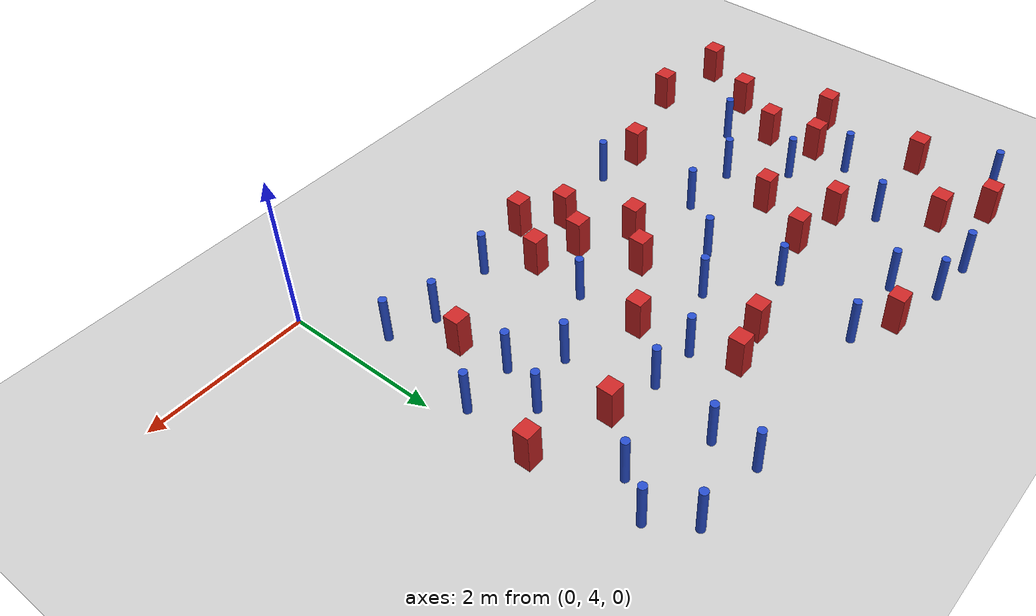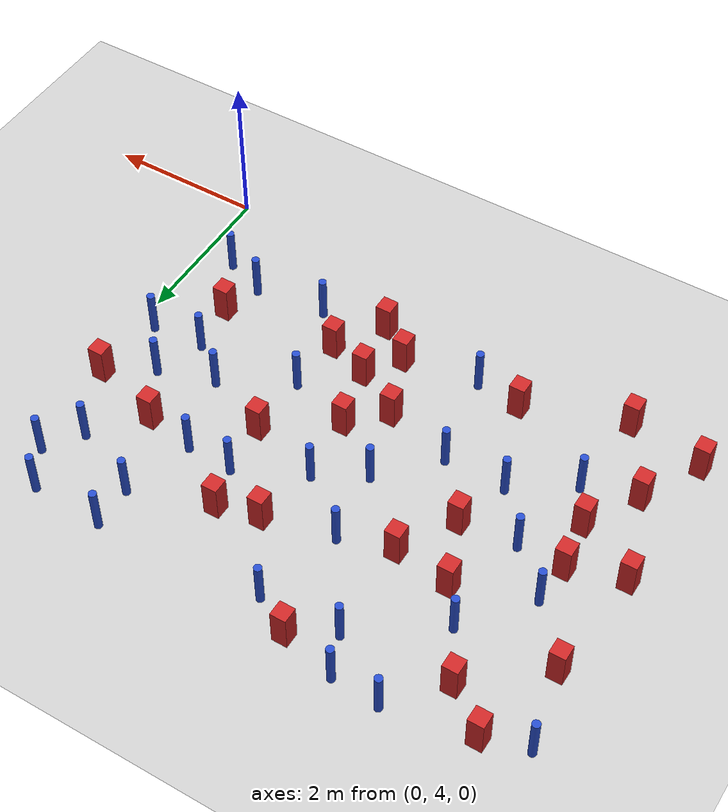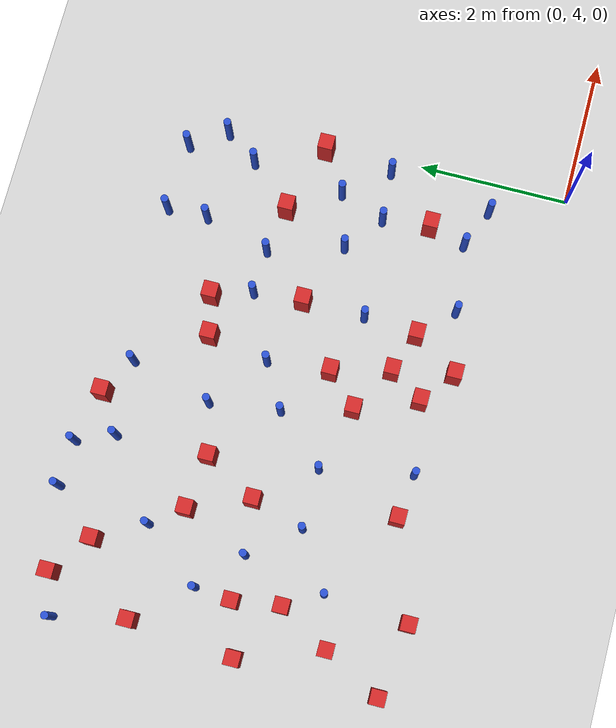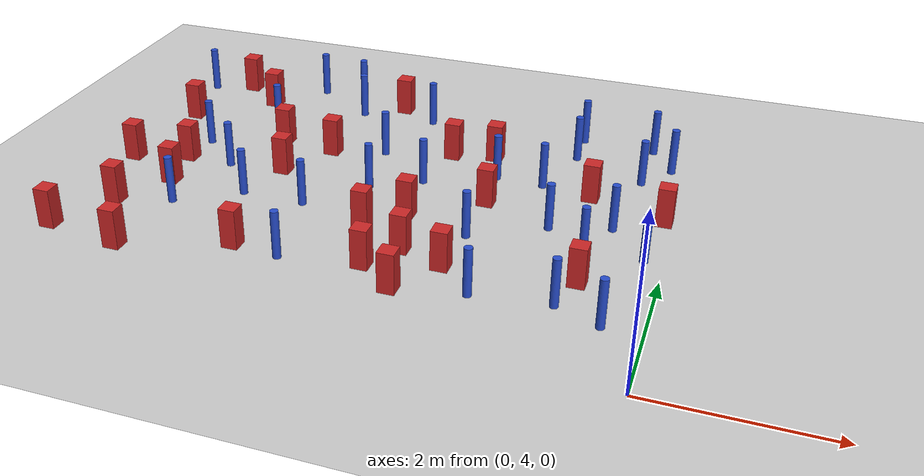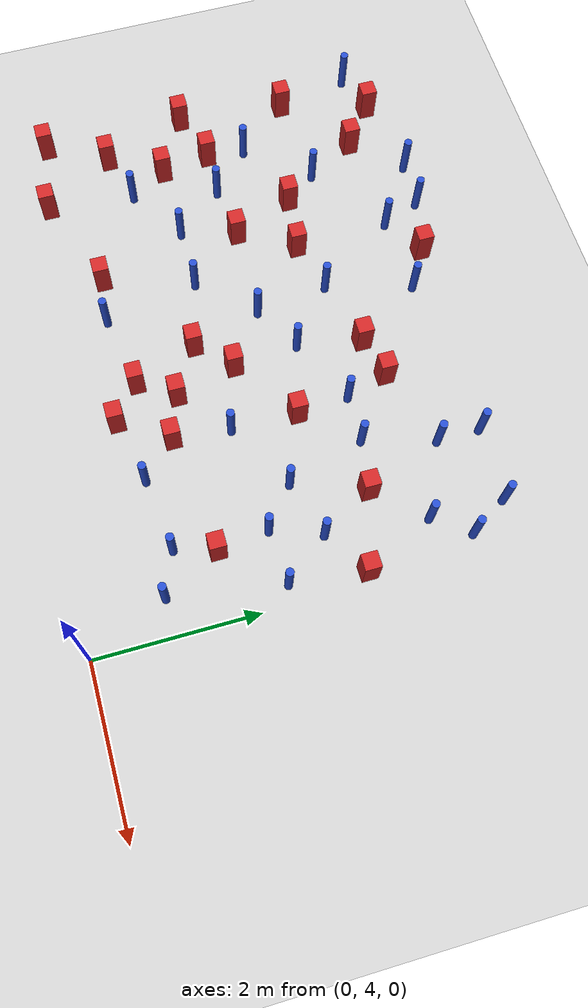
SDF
<sdf version="1.6">
 <world name="default">
  <model name="ground_plane">
   <static>1</static>
   <link name="link">
    <collision name="collision">
     <geometry><plane><normal>0 0 1</normal><size>100 100</size></plane></geometry>
     <surface><friction><ode><mu>100</mu><mu2>50</mu2></ode></friction></surface>
    </collision>
    <visual name="visual">
     <cast_shadows>0</cast_shadows>
     <geometry><plane><normal>0 0 1</normal><size>100 100</size></plane></geometry>
     <material>
      <ambient>1.0 1.0 1.0 1.0</ambient>
      <diffuse>0.8 0.8 0.8 1.0</diffuse>
      <specular>0.01 0.01 0.01 1.000000</specular>
     </material>
    </visual>
   </link>
  </model>
  <model name="pole_obstacle5">
   <static>true</static>
   <pose>-1.45639999024 9.13431002078 -3.09024884793e-07 -7.19054271912e-07 -2.1131507515e-07 -1.93935509273e-07</pose>
   <link name="link">
    <pose>0 0 0.3 0 -0 0</pose>
    <inertial>
     <mass>1</mass>
     <inertia><ixx>0.145833</ixx><ixy>0</ixy><ixz>0</ixz><iyy>0.145833</iyy><iyz>0</iyz><izz>0.125</izz></inertia>
    </inertial>
    <collision name="collision">
     <geometry><cylinder><radius>0.05</radius><length>.6</length></cylinder></geometry>
    </collision>
    <visual name="visual">
     <geometry><cylinder><radius>0.05</radius><length>.6</length></cylinder></geometry>
     <material>
      <script><name>Gazebo/Blue</name><uri>file://media/materials/scripts/gazebo.material</uri></script>
     </material>
    </visual>
   </link>
  </model>
  <model name="pole_obstacle6">
   <static>true</static>
   <pose>-0.533564990239 9.09575002078 -3.09024884793e-07 -7.19054271912e-07 -2.11315075159e-07 -1.93935509278e-07</pose>
   <link name="link">
    <pose>0 0 0.3 0 -0 0</pose>
    <inertial>
     <mass>1</mass>
     <inertia><ixx>0.145833</ixx><ixy>0</ixy><ixz>0</ixz><iyy>0.145833</iyy><iyz>0</iyz><izz>0.125</izz></inertia>
    </inertial>
    <collision name="collision">
     <geometry><cylinder><radius>0.05</radius><length>.6</length></cylinder></geometry>
    </collision>
    <visual name="visual">
     <geometry><cylinder><radius>0.05</radius><length>.6</length></cylinder></geometry>
     <material>
      <script><name>Gazebo/Blue</name><uri>file://media/materials/scripts/gazebo.material</uri></script>
     </material>
    </visual>
   </link>
  </model>
  <model name="square_post_obstacle11">
   <static>true</static>
   <pose>-3.0610999448 6.48294997467 -4.36207812815e-07 3.75137919937e-06 9.77721102514e-07 2.47381364184e-05</pose>
   <link name="link">
    <pose>0 0 0.25 0 -0 0</pose>
    <inertial>
     <mass>100</mass>
     <inertia>
      <ixx>0.166667</ixx>
      <ixy>0</ixy>
      <ixz>0</ixz>
      <iyy>0.166667</iyy>
      <iyz>0</iyz>
      <izz>0.166667</izz>
     </inertia>
    </inertial>
    <collision name="collision"><geometry><box><size>.2 .2 .5</size></box></geometry></collision>
    <visual name="visual">
     <geometry><box><size>.2 .2 .5</size></box></geometry>
     <material>
      <script><name>Gazebo/Red</name><uri>file://media/materials/scripts/gazebo.material</uri></script>
     </material>
    </visual>
   </link>
  </model>
  <model name="pole_obstacle20">
   <static>true</static>
   <pose>-0.547203990239 8.18078002078 -3.09024884793e-07 -7.19054271911e-07 -2.11315075168e-07 -1.93935509282e-07</pose>
   <link name="link">
    <pose>0 0 0.3 0 -0 0</pose>
    <inertial>
     <mass>1</mass>
     <inertia><ixx>0.145833</ixx><ixy>0</ixy><ixz>0</ixz><iyy>0.145833</iyy><iyz>0</iyz><izz>0.125</izz></inertia>
    </inertial>
    <collision name="collision">
     <geometry><cylinder><radius>0.05</radius><length>.6</length></cylinder></geometry>
    </collision>
    <visual name="visual">
     <geometry><cylinder><radius>0.05</radius><length>.6</length></cylinder></geometry>
     <material>
      <script><name>Gazebo/Blue</name><uri>file://media/materials/scripts/gazebo.material</uri></script>
     </material>
    </visual>
   </link>
  </model>
  <model name="pole_obstacle25">
   <static>true</static>
   <pose>-4.34102999024 6.30667002078 -3.09024884793e-07 -7.19054271911e-07 -2.1131507516e-07 -1.93935509277e-07</pose>
   <link name="link">
    <pose>0 0 0.3 0 -0 0</pose>
    <inertial>
     <mass>1</mass>
     <inertia><ixx>0.145833</ixx><ixy>0</ixy><ixz>0</ixz><iyy>0.145833</iyy><iyz>0</iyz><izz>0.125</izz></inertia>
    </inertial>
    <collision name="collision">
     <geometry><cylinder><radius>0.05</radius><length>.6</length></cylinder></geometry>
    </collision>
    <visual name="visual">
     <geometry><cylinder><radius>0.05</radius><length>.6</length></cylinder></geometry>
     <material>
      <script><name>Gazebo/Blue</name><uri>file://media/materials/scripts/gazebo.material</uri></script>
     </material>
    </visual>
   </link>
  </model>
  <model name="pole_obstacle26">
   <static>true</static>
   <pose>-1.88362999024 5.08133002078 -3.09024884793e-07 -7.19054271912e-07 -2.11315075132e-07 -1.93935509264e-07</pose>
   <link name="link">
    <pose>0 0 0.3 0 -0 0</pose>
    <inertial>
     <mass>1</mass>
     <inertia><ixx>0.145833</ixx><ixy>0</ixy><ixz>0</ixz><iyy>0.145833</iyy><iyz>0</iyz><izz>0.125</izz></inertia>
    </inertial>
    <collision name="collision">
     <geometry><cylinder><radius>0.05</radius><length>.6</length></cylinder></geometry>
    </collision>
    <visual name="visual">
     <geometry><cylinder><radius>0.05</radius><length>.6</length></cylinder></geometry>
     <material>
      <script><name>Gazebo/Blue</name><uri>file://media/materials/scripts/gazebo.material</uri></script>
     </material>
    </visual>
   </link>
  </model>
  <model name="pole_obstacle29">
   <static>true</static>
   <pose>-4.10729999024 5.09904002078 -3.09024884793e-07 -7.19054271911e-07 -2.1131507516e-07 -1.93935509277e-07</pose>
   <link name="link">
    <pose>0 0 0.3 0 -0 0</pose>
    <inertial>
     <mass>1</mass>
     <inertia><ixx>0.145833</ixx><ixy>0</ixy><ixz>0</ixz><iyy>0.145833</iyy><iyz>0</iyz><izz>0.125</izz></inertia>
    </inertial>
    <collision name="collision">
     <geometry><cylinder><radius>0.05</radius><length>.6</length></cylinder></geometry>
    </collision>
    <visual name="visual">
     <geometry><cylinder><radius>0.05</radius><length>.6</length></cylinder></geometry>
     <material>
      <script><name>Gazebo/Blue</name><uri>file://media/materials/scripts/gazebo.material</uri></script>
     </material>
    </visual>
   </link>
  </model>
  <model name="square_post_obstacle21">
   <static>true</static>
   <pose>-6.1377899448 6.31869997467 -4.36207812815e-07 3.75137919937e-06 9.77721102514e-07 2.47381364184e-05</pose>
   <link name="link">
    <pose>0 0 0.25 0 -0 0</pose>
    <inertial>
     <mass>100</mass>
     <inertia>
      <ixx>0.166667</ixx>
      <ixy>0</ixy>
      <ixz>0</ixz>
      <iyy>0.166667</iyy>
      <iyz>0</iyz>
      <izz>0.166667</izz>
     </inertia>
    </inertial>
    <collision name="collision"><geometry><box><size>.2 .2 .5</size></box></geometry></collision>
    <visual name="visual">
     <geometry><box><size>.2 .2 .5</size></box></geometry>
     <material>
      <script><name>Gazebo/Red</name><uri>file://media/materials/scripts/gazebo.material</uri></script>
     </material>
    </visual>
   </link>
  </model>
  <model name="pole_obstacle33">
   <static>true</static>
   <pose>-5.56033999024 8.23686002078 -3.09024884793e-07 -7.19054271912e-07 -2.1131507513e-07 -1.93935509261e-07</pose>
   <link name="link">
    <pose>0 0 0.3 0 -0 0</pose>
    <inertial>
     <mass>1</mass>
     <inertia><ixx>0.145833</ixx><ixy>0</ixy><ixz>0</ixz><iyy>0.145833</iyy><iyz>0</iyz><izz>0.125</izz></inertia>
    </inertial>
    <collision name="collision">
     <geometry><cylinder><radius>0.05</radius><length>.6</length></cylinder></geometry>
    </collision>
    <visual name="visual">
     <geometry><cylinder><radius>0.05</radius><length>.6</length></cylinder></geometry>
     <material>
      <script><name>Gazebo/Blue</name><uri>file://media/materials/scripts/gazebo.material</uri></script>
     </material>
    </visual>
   </link>
  </model>
  <model name="square_post_obstacle33">
   <static>true</static>
   <pose>-4.0554799448 9.26896997467 -4.36207812815e-07 3.75137919937e-06 9.77721102514e-07 2.47381364184e-05</pose>
   <link name="link">
    <pose>0 0 0.25 0 -0 0</pose>
    <inertial>
     <mass>100</mass>
     <inertia>
      <ixx>0.166667</ixx>
      <ixy>0</ixy>
      <ixz>0</ixz>
      <iyy>0.166667</iyy>
      <iyz>0</iyz>
      <izz>0.166667</izz>
     </inertia>
    </inertial>
    <collision name="collision"><geometry><box><size>.2 .2 .5</size></box></geometry></collision>
    <visual name="visual">
     <geometry><box><size>.2 .2 .5</size></box></geometry>
     <material>
      <script><name>Gazebo/Red</name><uri>file://media/materials/scripts/gazebo.material</uri></script>
     </material>
    </visual>
   </link>
  </model>
  <model name="pole_obstacle45">
   <static>true</static>
   <pose>-2.24777999024 6.23207002078 -3.09024884848e-07 -7.19054271903e-07 -2.11315075193e-07 -1.93935509285e-07</pose>
   <link name="link">
    <pose>0 0 0.3 0 -0 0</pose>
    <inertial>
     <mass>1</mass>
     <inertia><ixx>0.145833</ixx><ixy>0</ixy><ixz>0</ixz><iyy>0.145833</iyy><iyz>0</iyz><izz>0.125</izz></inertia>
    </inertial>
    <collision name="collision">
     <geometry><cylinder><radius>0.05</radius><length>.6</length></cylinder></geometry>
    </collision>
    <visual name="visual">
     <geometry><cylinder><radius>0.05</radius><length>.6</length></cylinder></geometry>
     <material>
      <script><name>Gazebo/Blue</name><uri>file://media/materials/scripts/gazebo.material</uri></script>
     </material>
    </visual>
   </link>
  </model>
  <model name="pole_obstacle55">
   <static>true</static>
   <pose>-2.29200999024 7.72665002078 -3.09024884848e-07 -7.19054271903e-07 -2.11315075193e-07 -1.93935509285e-07</pose>
   <link name="link">
    <pose>0 0 0.3 0 -0 0</pose>
    <inertial>
     <mass>1</mass>
     <inertia><ixx>0.145833</ixx><ixy>0</ixy><ixz>0</ixz><iyy>0.145833</iyy><iyz>0</iyz><izz>0.125</izz></inertia>
    </inertial>
    <collision name="collision">
     <geometry><cylinder><radius>0.05</radius><length>.6</length></cylinder></geometry>
    </collision>
    <visual name="visual">
     <geometry><cylinder><radius>0.05</radius><length>.6</length></cylinder></geometry>
     <material>
      <script><name>Gazebo/Blue</name><uri>file://media/materials/scripts/gazebo.material</uri></script>
     </material>
    </visual>
   </link>
  </model>
  <model name="pole_obstacle56">
   <static>true</static>
   <pose>-4.76418999024 9.44638002078 -3.09024884793e-07 -7.19054271912e-07 -2.1131507513e-07 -1.93935509261e-07</pose>
   <link name="link">
    <pose>0 0 0.3 0 -0 0</pose>
    <inertial>
     <mass>1</mass>
     <inertia><ixx>0.145833</ixx><ixy>0</ixy><ixz>0</ixz><iyy>0.145833</iyy><iyz>0</iyz><izz>0.125</izz></inertia>
    </inertial>
    <collision name="collision">
     <geometry><cylinder><radius>0.05</radius><length>.6</length></cylinder></geometry>
    </collision>
    <visual name="visual">
     <geometry><cylinder><radius>0.05</radius><length>.6</length></cylinder></geometry>
     <material>
      <script><name>Gazebo/Blue</name><uri>file://media/materials/scripts/gazebo.material</uri></script>
     </material>
    </visual>
   </link>
  </model>
  <model name="square_post_obstacle44">
   <static>true</static>
   <pose>-2.9895599448 8.12628997467 -4.36207812815e-07 3.75137919937e-06 9.77721102514e-07 2.47381364184e-05</pose>
   <link name="link">
    <pose>0 0 0.25 0 -0 0</pose>
    <inertial>
     <mass>100</mass>
     <inertia>
      <ixx>0.166667</ixx>
      <ixy>0</ixy>
      <ixz>0</ixz>
      <iyy>0.166667</iyy>
      <iyz>0</iyz>
      <izz>0.166667</izz>
     </inertia>
    </inertial>
    <collision name="collision"><geometry><box><size>.2 .2 .5</size></box></geometry></collision>
    <visual name="visual">
     <geometry><box><size>.2 .2 .5</size></box></geometry>
     <material>
      <script><name>Gazebo/Red</name><uri>file://media/materials/scripts/gazebo.material</uri></script>
     </material>
    </visual>
   </link>
  </model>
  <model name="square_post_obstacle45">
   <static>true</static>
   <pose>-2.8581299448 5.70772997467 -4.36207812815e-07 3.75137919937e-06 9.77721102514e-07 2.47381364184e-05</pose>
   <link name="link">
    <pose>0 0 0.25 0 -0 0</pose>
    <inertial>
     <mass>100</mass>
     <inertia>
      <ixx>0.166667</ixx>
      <ixy>0</ixy>
      <ixz>0</ixz>
      <iyy>0.166667</iyy>
      <iyz>0</iyz>
      <izz>0.166667</izz>
     </inertia>
    </inertial>
    <collision name="collision"><geometry><box><size>.2 .2 .5</size></box></geometry></collision>
    <visual name="visual">
     <geometry><box><size>.2 .2 .5</size></box></geometry>
     <material>
      <script><name>Gazebo/Red</name><uri>file://media/materials/scripts/gazebo.material</uri></script>
     </material>
    </visual>
   </link>
  </model>
  <model name="pole_obstacle62">
   <static>true</static>
   <pose>-5.13306999024 6.31591002078 -3.09024884793e-07 -7.19054271911e-07 -2.1131507516e-07 -1.93935509277e-07</pose>
   <link name="link">
    <pose>0 0 0.3 0 -0 0</pose>
    <inertial>
     <mass>1</mass>
     <inertia><ixx>0.145833</ixx><ixy>0</ixy><ixz>0</ixz><iyy>0.145833</iyy><iyz>0</iyz><izz>0.125</izz></inertia>
    </inertial>
    <collision name="collision">
     <geometry><cylinder><radius>0.05</radius><length>.6</length></cylinder></geometry>
    </collision>
    <visual name="visual">
     <geometry><cylinder><radius>0.05</radius><length>.6</length></cylinder></geometry>
     <material>
      <script><name>Gazebo/Blue</name><uri>file://media/materials/scripts/gazebo.material</uri></script>
     </material>
    </visual>
   </link>
  </model>
  <model name="square_post_obstacle49">
   <static>true</static>
   <pose>-6.7765499448 8.14212997467 -4.36207812815e-07 3.75137919937e-06 9.77721102514e-07 2.47381364184e-05</pose>
   <link name="link">
    <pose>0 0 0.25 0 -0 0</pose>
    <inertial>
     <mass>100</mass>
     <inertia>
      <ixx>0.166667</ixx>
      <ixy>0</ixy>
      <ixz>0</ixz>
      <iyy>0.166667</iyy>
      <iyz>0</iyz>
      <izz>0.166667</izz>
     </inertia>
    </inertial>
    <collision name="collision"><geometry><box><size>.2 .2 .5</size></box></geometry></collision>
    <visual name="visual">
     <geometry><box><size>.2 .2 .5</size></box></geometry>
     <material>
      <script><name>Gazebo/Red</name><uri>file://media/materials/scripts/gazebo.material</uri></script>
     </material>
    </visual>
   </link>
  </model>
  <model name="pole_obstacle66">
   <static>true</static>
   <pose>-3.56551999024 8.99974002078 -3.09024884793e-07 -7.19054271912e-07 -2.11315075137e-07 -1.93935509267e-07</pose>
   <link name="link">
    <pose>0 0 0.3 0 -0 0</pose>
    <inertial>
     <mass>1</mass>
     <inertia><ixx>0.145833</ixx><ixy>0</ixy><ixz>0</ixz><iyy>0.145833</iyy><iyz>0</iyz><izz>0.125</izz></inertia>
    </inertial>
    <collision name="collision">
     <geometry><cylinder><radius>0.05</radius><length>.6</length></cylinder></geometry>
    </collision>
    <visual name="visual">
     <geometry><cylinder><radius>0.05</radius><length>.6</length></cylinder></geometry>
     <material>
      <script><name>Gazebo/Blue</name><uri>file://media/materials/scripts/gazebo.material</uri></script>
     </material>
    </visual>
   </link>
  </model>
  <model name="square_post_obstacle58">
   <static>true</static>
   <pose>-6.9114599448 6.74060997467 -4.36207812815e-07 3.75137919937e-06 9.77721102514e-07 2.47381364184e-05</pose>
   <link name="link">
    <pose>0 0 0.25 0 -0 0</pose>
    <inertial>
     <mass>100</mass>
     <inertia>
      <ixx>0.166667</ixx>
      <ixy>0</ixy>
      <ixz>0</ixz>
      <iyy>0.166667</iyy>
      <iyz>0</iyz>
      <izz>0.166667</izz>
     </inertia>
    </inertial>
    <collision name="collision"><geometry><box><size>.2 .2 .5</size></box></geometry></collision>
    <visual name="visual">
     <geometry><box><size>.2 .2 .5</size></box></geometry>
     <material>
      <script><name>Gazebo/Red</name><uri>file://media/materials/scripts/gazebo.material</uri></script>
     </material>
    </visual>
   </link>
  </model>
  <model name="pole_obstacle69">
   <static>true</static>
   <pose>-1.39105999024 6.71941002078 -3.09024884793e-07 -7.19054271912e-07 -2.11315075134e-07 -1.93935509265e-07</pose>
   <link name="link">
    <pose>0 0 0.3 0 -0 0</pose>
    <inertial>
     <mass>1</mass>
     <inertia><ixx>0.145833</ixx><ixy>0</ixy><ixz>0</ixz><iyy>0.145833</iyy><iyz>0</iyz><izz>0.125</izz></inertia>
    </inertial>
    <collision name="collision">
     <geometry><cylinder><radius>0.05</radius><length>.6</length></cylinder></geometry>
    </collision>
    <visual name="visual">
     <geometry><cylinder><radius>0.05</radius><length>.6</length></cylinder></geometry>
     <material>
      <script><name>Gazebo/Blue</name><uri>file://media/materials/scripts/gazebo.material</uri></script>
     </material>
    </visual>
   </link>
  </model>
  <model name="square_post_obstacle65">
   <static>true</static>
   <pose>-4.5256199448 7.71997997467 -4.36207812815e-07 3.75137919937e-06 9.77721102514e-07 2.47381364184e-05</pose>
   <link name="link">
    <pose>0 0 0.25 0 -0 0</pose>
    <inertial>
     <mass>100</mass>
     <inertia>
      <ixx>0.166667</ixx>
      <ixy>0</ixy>
      <ixz>0</ixz>
      <iyy>0.166667</iyy>
      <iyz>0</iyz>
      <izz>0.166667</izz>
     </inertia>
    </inertial>
    <collision name="collision"><geometry><box><size>.2 .2 .5</size></box></geometry></collision>
    <visual name="visual">
     <geometry><box><size>.2 .2 .5</size></box></geometry>
     <material>
      <script><name>Gazebo/Red</name><uri>file://media/materials/scripts/gazebo.material</uri></script>
     </material>
    </visual>
   </link>
  </model>
  <model name="square_post_obstacle71">
   <static>true</static>
   <pose>-1.0699499448 7.59148997467 -4.36207812815e-07 3.75137919937e-06 9.77721102514e-07 2.47381364184e-05</pose>
   <link name="link">
    <pose>0 0 0.25 0 -0 0</pose>
    <inertial>
     <mass>100</mass>
     <inertia>
      <ixx>0.166667</ixx>
      <ixy>0</ixy>
      <ixz>0</ixz>
      <iyy>0.166667</iyy>
      <iyz>0</iyz>
      <izz>0.166667</izz>
     </inertia>
    </inertial>
    <collision name="collision"><geometry><box><size>.2 .2 .5</size></box></geometry></collision>
    <visual name="visual">
     <geometry><box><size>.2 .2 .5</size></box></geometry>
     <material>
      <script><name>Gazebo/Red</name><uri>file://media/materials/scripts/gazebo.material</uri></script>
     </material>
    </visual>
   </link>
  </model>
  <model name="square_post_obstacle80">
   <static>true</static>
   <pose>-5.2496499448 7.81441997467 -4.36207812815e-07 3.75137919937e-06 9.77721102514e-07 2.47381364184e-05</pose>
   <link name="link">
    <pose>0 0 0.25 0 -0 0</pose>
    <inertial>
     <mass>100</mass>
     <inertia>
      <ixx>0.166667</ixx>
      <ixy>0</ixy>
      <ixz>0</ixz>
      <iyy>0.166667</iyy>
      <iyz>0</iyz>
      <izz>0.166667</izz>
     </inertia>
    </inertial>
    <collision name="collision"><geometry><box><size>.2 .2 .5</size></box></geometry></collision>
    <visual name="visual">
     <geometry><box><size>.2 .2 .5</size></box></geometry>
     <material>
      <script><name>Gazebo/Red</name><uri>file://media/materials/scripts/gazebo.material</uri></script>
     </material>
    </visual>
   </link>
  </model>
  <model name="pole_obstacle93">
   <static>true</static>
   <pose>-1.69690999024 7.70587002078 -3.09024884793e-07 -7.19054271912e-07 -2.11315075134e-07 -1.93935509265e-07</pose>
   <link name="link">
    <pose>0 0 0.3 0 -0 0</pose>
    <inertial>
     <mass>1</mass>
     <inertia><ixx>0.145833</ixx><ixy>0</ixy><ixz>0</ixz><iyy>0.145833</iyy><iyz>0</iyz><izz>0.125</izz></inertia>
    </inertial>
    <collision name="collision">
     <geometry><cylinder><radius>0.05</radius><length>.6</length></cylinder></geometry>
    </collision>
    <visual name="visual">
     <geometry><cylinder><radius>0.05</radius><length>.6</length></cylinder></geometry>
     <material>
      <script><name>Gazebo/Blue</name><uri>file://media/materials/scripts/gazebo.material</uri></script>
     </material>
    </visual>
   </link>
  </model>
  <model name="pole_obstacle97">
   <static>true</static>
   <pose>-0.679304990239 6.93684002078 -3.09024884793e-07 -7.19054271912e-07 -2.11315075129e-07 -1.93935509261e-07</pose>
   <link name="link">
    <pose>0 0 0.3 0 -0 0</pose>
    <inertial>
     <mass>1</mass>
     <inertia><ixx>0.145833</ixx><ixy>0</ixy><ixz>0</ixz><iyy>0.145833</iyy><iyz>0</iyz><izz>0.125</izz></inertia>
    </inertial>
    <collision name="collision">
     <geometry><cylinder><radius>0.05</radius><length>.6</length></cylinder></geometry>
    </collision>
    <visual name="visual">
     <geometry><cylinder><radius>0.05</radius><length>.6</length></cylinder></geometry>
     <material>
      <script><name>Gazebo/Blue</name><uri>file://media/materials/scripts/gazebo.material</uri></script>
     </material>
    </visual>
   </link>
  </model>
  <model name="square_post_obstacle102">
   <static>true</static>
   <pose>-2.7092699448 4.91366997467 -4.36207812815e-07 3.75137919937e-06 9.77721102514e-07 2.47381364184e-05</pose>
   <link name="link">
    <pose>0 0 0.25 0 -0 0</pose>
    <inertial>
     <mass>100</mass>
     <inertia>
      <ixx>0.166667</ixx>
      <ixy>0</ixy>
      <ixz>0</ixz>
      <iyy>0.166667</iyy>
      <iyz>0</iyz>
      <izz>0.166667</izz>
     </inertia>
    </inertial>
    <collision name="collision"><geometry><box><size>.2 .2 .5</size></box></geometry></collision>
    <visual name="visual">
     <geometry><box><size>.2 .2 .5</size></box></geometry>
     <material>
      <script><name>Gazebo/Red</name><uri>file://media/materials/scripts/gazebo.material</uri></script>
     </material>
    </visual>
   </link>
  </model>
  <model name="square_post_obstacle108">
   <static>true</static>
   <pose>-4.9234599448 7.01937997467 -4.36207812815e-07 3.75137919937e-06 9.77721102514e-07 2.47381364184e-05</pose>
   <link name="link">
    <pose>0 0 0.25 0 -0 0</pose>
    <inertial>
     <mass>100</mass>
     <inertia>
      <ixx>0.166667</ixx>
      <ixy>0</ixy>
      <ixz>0</ixz>
      <iyy>0.166667</iyy>
      <iyz>0</iyz>
      <izz>0.166667</izz>
     </inertia>
    </inertial>
    <collision name="collision"><geometry><box><size>.2 .2 .5</size></box></geometry></collision>
    <visual name="visual">
     <geometry><box><size>.2 .2 .5</size></box></geometry>
     <material>
      <script><name>Gazebo/Red</name><uri>file://media/materials/scripts/gazebo.material</uri></script>
     </material>
    </visual>
   </link>
  </model>
  <model name="square_post_obstacle112">
   <static>true</static>
   <pose>-2.4591699448 8.25198997467 -4.36207812815e-07 3.75137919937e-06 9.77721102514e-07 2.47381364184e-05</pose>
   <link name="link">
    <pose>0 0 0.25 0 -0 0</pose>
    <inertial>
     <mass>100</mass>
     <inertia>
      <ixx>0.166667</ixx>
      <ixy>0</ixy>
      <ixz>0</ixz>
      <iyy>0.166667</iyy>
      <iyz>0</iyz>
      <izz>0.166667</izz>
     </inertia>
    </inertial>
    <collision name="collision"><geometry><box><size>.2 .2 .5</size></box></geometry></collision>
    <visual name="visual">
     <geometry><box><size>.2 .2 .5</size></box></geometry>
     <material>
      <script><name>Gazebo/Red</name><uri>file://media/materials/scripts/gazebo.material</uri></script>
     </material>
    </visual>
   </link>
  </model>
  <model name="square_post_obstacle117">
   <static>true</static>
   <pose>-5.9118499448 8.86777997467 -4.36207812815e-07 3.75137919937e-06 9.77721102514e-07 2.47381364184e-05</pose>
   <link name="link">
    <pose>0 0 0.25 0 -0 0</pose>
    <inertial>
     <mass>100</mass>
     <inertia>
      <ixx>0.166667</ixx>
      <ixy>0</ixy>
      <ixz>0</ixz>
      <iyy>0.166667</iyy>
      <iyz>0</iyz>
      <izz>0.166667</izz>
     </inertia>
    </inertial>
    <collision name="collision"><geometry><box><size>.2 .2 .5</size></box></geometry></collision>
    <visual name="visual">
     <geometry><box><size>.2 .2 .5</size></box></geometry>
     <material>
      <script><name>Gazebo/Red</name><uri>file://media/materials/scripts/gazebo.material</uri></script>
     </material>
    </visual>
   </link>
  </model>
  <model name="square_post_obstacle121">
   <static>true</static>
   <pose>-6.9255699448 4.88083997467 -4.36207812815e-07 3.75137919937e-06 9.77721102514e-07 2.47381364184e-05</pose>
   <link name="link">
    <pose>0 0 0.25 0 -0 0</pose>
    <inertial>
     <mass>100</mass>
     <inertia>
      <ixx>0.166667</ixx>
      <ixy>0</ixy>
      <ixz>0</ixz>
      <iyy>0.166667</iyy>
      <iyz>0</iyz>
      <izz>0.166667</izz>
     </inertia>
    </inertial>
    <collision name="collision"><geometry><box><size>.2 .2 .5</size></box></geometry></collision>
    <visual name="visual">
     <geometry><box><size>.2 .2 .5</size></box></geometry>
     <material>
      <script><name>Gazebo/Red</name><uri>file://media/materials/scripts/gazebo.material</uri></script>
     </material>
    </visual>
   </link>
  </model>
  <model name="pole_obstacle127">
   <static>true</static>
   <pose>-3.73083999024 6.97545002078 -3.09024884848e-07 -7.19054271903e-07 -2.11315075193e-07 -1.93935509285e-07</pose>
   <link name="link">
    <pose>0 0 0.3 0 -0 0</pose>
    <inertial>
     <mass>1</mass>
     <inertia><ixx>0.145833</ixx><ixy>0</ixy><ixz>0</ixz><iyy>0.145833</iyy><iyz>0</iyz><izz>0.125</izz></inertia>
    </inertial>
    <collision name="collision">
     <geometry><cylinder><radius>0.05</radius><length>.6</length></cylinder></geometry>
    </collision>
    <visual name="visual">
     <geometry><cylinder><radius>0.05</radius><length>.6</length></cylinder></geometry>
     <material>
      <script><name>Gazebo/Blue</name><uri>file://media/materials/scripts/gazebo.material</uri></script>
     </material>
    </visual>
   </link>
  </model>
  <model name="square_post_obstacle125">
   <static>true</static>
   <pose>-4.6965999448 5.17479997467 -4.36207812815e-07 3.75137919937e-06 9.77721102514e-07 2.47381364184e-05</pose>
   <link name="link">
    <pose>0 0 0.25 0 -0 0</pose>
    <inertial>
     <mass>100</mass>
     <inertia>
      <ixx>0.166667</ixx>
      <ixy>0</ixy>
      <ixz>0</ixz>
      <iyy>0.166667</iyy>
      <iyz>0</iyz>
      <izz>0.166667</izz>
     </inertia>
    </inertial>
    <collision name="collision"><geometry><box><size>.2 .2 .5</size></box></geometry></collision>
    <visual name="visual">
     <geometry><box><size>.2 .2 .5</size></box></geometry>
     <material>
      <script><name>Gazebo/Red</name><uri>file://media/materials/scripts/gazebo.material</uri></script>
     </material>
    </visual>
   </link>
  </model>
  <model name="pole_obstacle131">
   <static>true</static>
   <pose>-0.234541990239 8.61814002078 -3.09024884793e-07 -7.19054271911e-07 -2.11315075163e-07 -1.9393550928e-07</pose>
   <link name="link">
    <pose>0 0 0.3 0 -0 0</pose>
    <inertial>
     <mass>1</mass>
     <inertia><ixx>0.145833</ixx><ixy>0</ixy><ixz>0</ixz><iyy>0.145833</iyy><iyz>0</iyz><izz>0.125</izz></inertia>
    </inertial>
    <collision name="collision">
     <geometry><cylinder><radius>0.05</radius><length>.6</length></cylinder></geometry>
    </collision>
    <visual name="visual">
     <geometry><cylinder><radius>0.05</radius><length>.6</length></cylinder></geometry>
     <material>
      <script><name>Gazebo/Blue</name><uri>file://media/materials/scripts/gazebo.material</uri></script>
     </material>
    </visual>
   </link>
  </model>
  <model name="square_post_obstacle134">
   <static>true</static>
   <pose>-6.2294599448 6.95155997467 -4.36207812815e-07 3.75137919937e-06 9.77721102514e-07 2.47381364184e-05</pose>
   <link name="link">
    <pose>0 0 0.25 0 -0 0</pose>
    <inertial>
     <mass>100</mass>
     <inertia>
      <ixx>0.166667</ixx>
      <ixy>0</ixy>
      <ixz>0</ixz>
      <iyy>0.166667</iyy>
      <iyz>0</iyz>
      <izz>0.166667</izz>
     </inertia>
    </inertial>
    <collision name="collision"><geometry><box><size>.2 .2 .5</size></box></geometry></collision>
    <visual name="visual">
     <geometry><box><size>.2 .2 .5</size></box></geometry>
     <material>
      <script><name>Gazebo/Red</name><uri>file://media/materials/scripts/gazebo.material</uri></script>
     </material>
    </visual>
   </link>
  </model>
  <model name="pole_obstacle143">
   <static>true</static>
   <pose>-1.44700999024 8.59338002078 -3.09024884793e-07 -7.19054271912e-07 -2.1131507515e-07 -1.93935509273e-07</pose>
   <link name="link">
    <pose>0 0 0.3 0 -0 0</pose>
    <inertial>
     <mass>1</mass>
     <inertia><ixx>0.145833</ixx><ixy>0</ixy><ixz>0</ixz><iyy>0.145833</iyy><iyz>0</iyz><izz>0.125</izz></inertia>
    </inertial>
    <collision name="collision">
     <geometry><cylinder><radius>0.05</radius><length>.6</length></cylinder></geometry>
    </collision>
    <visual name="visual">
     <geometry><cylinder><radius>0.05</radius><length>.6</length></cylinder></geometry>
     <material>
      <script><name>Gazebo/Blue</name><uri>file://media/materials/scripts/gazebo.material</uri></script>
     </material>
    </visual>
   </link>
  </model>
  <model name="pole_obstacle145">
   <static>true</static>
   <pose>-5.63728999024 6.93918002078 -3.09024884793e-07 -7.19054271911e-07 -2.1131507516e-07 -1.93935509277e-07</pose>
   <link name="link">
    <pose>0 0 0.3 0 -0 0</pose>
    <inertial>
     <mass>1</mass>
     <inertia><ixx>0.145833</ixx><ixy>0</ixy><ixz>0</ixz><iyy>0.145833</iyy><iyz>0</iyz><izz>0.125</izz></inertia>
    </inertial>
    <collision name="collision">
     <geometry><cylinder><radius>0.05</radius><length>.6</length></cylinder></geometry>
    </collision>
    <visual name="visual">
     <geometry><cylinder><radius>0.05</radius><length>.6</length></cylinder></geometry>
     <material>
      <script><name>Gazebo/Blue</name><uri>file://media/materials/scripts/gazebo.material</uri></script>
     </material>
    </visual>
   </link>
  </model>
  <model name="pole_obstacle150">
   <static>true</static>
   <pose>-0.444746990239 4.97763002078 -3.09024884793e-07 -7.19054271912e-07 -2.1131507513e-07 -1.93935509262e-07</pose>
   <link name="link">
    <pose>0 0 0.3 0 -0 0</pose>
    <inertial>
     <mass>1</mass>
     <inertia><ixx>0.145833</ixx><ixy>0</ixy><ixz>0</ixz><iyy>0.145833</iyy><iyz>0</iyz><izz>0.125</izz></inertia>
    </inertial>
    <collision name="collision">
     <geometry><cylinder><radius>0.05</radius><length>.6</length></cylinder></geometry>
    </collision>
    <visual name="visual">
     <geometry><cylinder><radius>0.05</radius><length>.6</length></cylinder></geometry>
     <material>
      <script><name>Gazebo/Blue</name><uri>file://media/materials/scripts/gazebo.material</uri></script>
     </material>
    </visual>
   </link>
  </model>
  <model name="pole_obstacle159">
   <static>true</static>
   <pose>-6.98475999024 9.10542002078 -3.09024884793e-07 -7.19054271912e-07 -2.1131507513e-07 -1.93935509261e-07</pose>
   <link name="link">
    <pose>0 0 0.3 0 -0 0</pose>
    <inertial>
     <mass>1</mass>
     <inertia><ixx>0.145833</ixx><ixy>0</ixy><ixz>0</ixz><iyy>0.145833</iyy><iyz>0</iyz><izz>0.125</izz></inertia>
    </inertial>
    <collision name="collision">
     <geometry><cylinder><radius>0.05</radius><length>.6</length></cylinder></geometry>
    </collision>
    <visual name="visual">
     <geometry><cylinder><radius>0.05</radius><length>.6</length></cylinder></geometry>
     <material>
      <script><name>Gazebo/Blue</name><uri>file://media/materials/scripts/gazebo.material</uri></script>
     </material>
    </visual>
   </link>
  </model>
  <model name="pole_obstacle160">
   <static>true</static>
   <pose>-5.86121999024 5.84107002078 -3.09024884793e-07 -7.19054271911e-07 -2.1131507516e-07 -1.93935509277e-07</pose>
   <link name="link">
    <pose>0 0 0.3 0 -0 0</pose>
    <inertial>
     <mass>1</mass>
     <inertia><ixx>0.145833</ixx><ixy>0</ixy><ixz>0</ixz><iyy>0.145833</iyy><iyz>0</iyz><izz>0.125</izz></inertia>
    </inertial>
    <collision name="collision">
     <geometry><cylinder><radius>0.05</radius><length>.6</length></cylinder></geometry>
    </collision>
    <visual name="visual">
     <geometry><cylinder><radius>0.05</radius><length>.6</length></cylinder></geometry>
     <material>
      <script><name>Gazebo/Blue</name><uri>file://media/materials/scripts/gazebo.material</uri></script>
     </material>
    </visual>
   </link>
  </model>
  <model name="square_post_obstacle155">
   <static>true</static>
   <pose>-2.2430299448 7.06277997467 -4.36207812815e-07 3.75137919937e-06 9.77721102514e-07 2.47381364184e-05</pose>
   <link name="link">
    <pose>0 0 0.25 0 -0 0</pose>
    <inertial>
     <mass>100</mass>
     <inertia>
      <ixx>0.166667</ixx>
      <ixy>0</ixy>
      <ixz>0</ixz>
      <iyy>0.166667</iyy>
      <iyz>0</iyz>
      <izz>0.166667</izz>
     </inertia>
    </inertial>
    <collision name="collision"><geometry><box><size>.2 .2 .5</size></box></geometry></collision>
    <visual name="visual">
     <geometry><box><size>.2 .2 .5</size></box></geometry>
     <material>
      <script><name>Gazebo/Red</name><uri>file://media/materials/scripts/gazebo.material</uri></script>
     </material>
    </visual>
   </link>
  </model>
  <model name="square_post_obstacle160">
   <static>true</static>
   <pose>-6.4437099448 9.27630997467 -4.36207812815e-07 3.75137919937e-06 9.77721102514e-07 2.47381364184e-05</pose>
   <link name="link">
    <pose>0 0 0.25 0 -0 0</pose>
    <inertial>
     <mass>100</mass>
     <inertia>
      <ixx>0.166667</ixx>
      <ixy>0</ixy>
      <ixz>0</ixz>
      <iyy>0.166667</iyy>
      <iyz>0</iyz>
      <izz>0.166667</izz>
     </inertia>
    </inertial>
    <collision name="collision"><geometry><box><size>.2 .2 .5</size></box></geometry></collision>
    <visual name="visual">
     <geometry><box><size>.2 .2 .5</size></box></geometry>
     <material>
      <script><name>Gazebo/Red</name><uri>file://media/materials/scripts/gazebo.material</uri></script>
     </material>
    </visual>
   </link>
  </model>
  <model name="pole_obstacle168">
   <static>true</static>
   <pose>-4.56327999024 8.95270002078 -3.09024884793e-07 -7.19054271912e-07 -2.1131507513e-07 -1.93935509261e-07</pose>
   <link name="link">
    <pose>0 0 0.3 0 -0 0</pose>
    <inertial>
     <mass>1</mass>
     <inertia><ixx>0.145833</ixx><ixy>0</ixy><ixz>0</ixz><iyy>0.145833</iyy><iyz>0</iyz><izz>0.125</izz></inertia>
    </inertial>
    <collision name="collision">
     <geometry><cylinder><radius>0.05</radius><length>.6</length></cylinder></geometry>
    </collision>
    <visual name="visual">
     <geometry><cylinder><radius>0.05</radius><length>.6</length></cylinder></geometry>
     <material>
      <script><name>Gazebo/Blue</name><uri>file://media/materials/scripts/gazebo.material</uri></script>
     </material>
    </visual>
   </link>
  </model>
  <model name="pole_obstacle171">
   <static>true</static>
   <pose>-0.971240990239 5.19113002078 -3.09024884793e-07 -7.19054271912e-07 -2.11315075128e-07 -1.93935509261e-07</pose>
   <link name="link">
    <pose>0 0 0.3 0 -0 0</pose>
    <inertial>
     <mass>1</mass>
     <inertia><ixx>0.145833</ixx><ixy>0</ixy><ixz>0</ixz><iyy>0.145833</iyy><iyz>0</iyz><izz>0.125</izz></inertia>
    </inertial>
    <collision name="collision">
     <geometry><cylinder><radius>0.05</radius><length>.6</length></cylinder></geometry>
    </collision>
    <visual name="visual">
     <geometry><cylinder><radius>0.05</radius><length>.6</length></cylinder></geometry>
     <material>
      <script><name>Gazebo/Blue</name><uri>file://media/materials/scripts/gazebo.material</uri></script>
     </material>
    </visual>
   </link>
  </model>
  <model name="pole_obstacle174">
   <static>true</static>
   <pose>-0.901880990239 6.32449002078 -3.09024884793e-07 -7.19054271912e-07 -2.11315075126e-07 -1.9393550926e-07</pose>
   <link name="link">
    <pose>0 0 0.3 0 -0 0</pose>
    <inertial>
     <mass>1</mass>
     <inertia><ixx>0.145833</ixx><ixy>0</ixy><ixz>0</ixz><iyy>0.145833</iyy><iyz>0</iyz><izz>0.125</izz></inertia>
    </inertial>
    <collision name="collision">
     <geometry><cylinder><radius>0.05</radius><length>.6</length></cylinder></geometry>
    </collision>
    <visual name="visual">
     <geometry><cylinder><radius>0.05</radius><length>.6</length></cylinder></geometry>
     <material>
      <script><name>Gazebo/Blue</name><uri>file://media/materials/scripts/gazebo.material</uri></script>
     </material>
    </visual>
   </link>
  </model>
  <model name="pole_obstacle179">
   <static>true</static>
   <pose>-3.85858999024 7.90715002078 -3.09024884848e-07 -7.19054271903e-07 -2.11315075193e-07 -1.93935509285e-07</pose>
   <link name="link">
    <pose>0 0 0.3 0 -0 0</pose>
    <inertial>
     <mass>1</mass>
     <inertia><ixx>0.145833</ixx><ixy>0</ixy><ixz>0</ixz><iyy>0.145833</iyy><iyz>0</iyz><izz>0.125</izz></inertia>
    </inertial>
    <collision name="collision">
     <geometry><cylinder><radius>0.05</radius><length>.6</length></cylinder></geometry>
    </collision>
    <visual name="visual">
     <geometry><cylinder><radius>0.05</radius><length>.6</length></cylinder></geometry>
     <material>
      <script><name>Gazebo/Blue</name><uri>file://media/materials/scripts/gazebo.material</uri></script>
     </material>
    </visual>
   </link>
  </model>
  <model name="square_post_obstacle175">
   <static>true</static>
   <pose>-3.4693899448 6.07229997467 -4.36207812815e-07 3.75137919937e-06 9.77721102514e-07 2.47381364184e-05</pose>
   <link name="link">
    <pose>0 0 0.25 0 -0 0</pose>
    <inertial>
     <mass>100</mass>
     <inertia>
      <ixx>0.166667</ixx>
      <ixy>0</ixy>
      <ixz>0</ixz>
      <iyy>0.166667</iyy>
      <iyz>0</iyz>
      <izz>0.166667</izz>
     </inertia>
    </inertial>
    <collision name="collision"><geometry><box><size>.2 .2 .5</size></box></geometry></collision>
    <visual name="visual">
     <geometry><box><size>.2 .2 .5</size></box></geometry>
     <material>
      <script><name>Gazebo/Red</name><uri>file://media/materials/scripts/gazebo.material</uri></script>
     </material>
    </visual>
   </link>
  </model>
  <model name="pole_obstacle181">
   <static>true</static>
   <pose>-3.13768999024 7.31857002078 -3.09024884793e-07 -7.19054271912e-07 -2.11315075134e-07 -1.93935509266e-07</pose>
   <link name="link">
    <pose>0 0 0.3 0 -0 0</pose>
    <inertial>
     <mass>1</mass>
     <inertia><ixx>0.145833</ixx><ixy>0</ixy><ixz>0</ixz><iyy>0.145833</iyy><iyz>0</iyz><izz>0.125</izz></inertia>
    </inertial>
    <collision name="collision">
     <geometry><cylinder><radius>0.05</radius><length>.6</length></cylinder></geometry>
    </collision>
    <visual name="visual">
     <geometry><cylinder><radius>0.05</radius><length>.6</length></cylinder></geometry>
     <material>
      <script><name>Gazebo/Blue</name><uri>file://media/materials/scripts/gazebo.material</uri></script>
     </material>
    </visual>
   </link>
  </model>
  <model name="pole_obstacle184">
   <static>true</static>
   <pose>-6.18377999024 7.45026002078 -3.09024884793e-07 -7.19054271911e-07 -2.1131507516e-07 -1.93935509277e-07</pose>
   <link name="link">
    <pose>0 0 0.3 0 -0 0</pose>
    <inertial>
     <mass>1</mass>
     <inertia><ixx>0.145833</ixx><ixy>0</ixy><ixz>0</ixz><iyy>0.145833</iyy><iyz>0</iyz><izz>0.125</izz></inertia>
    </inertial>
    <collision name="collision">
     <geometry><cylinder><radius>0.05</radius><length>.6</length></cylinder></geometry>
    </collision>
    <visual name="visual">
     <geometry><cylinder><radius>0.05</radius><length>.6</length></cylinder></geometry>
     <material>
      <script><name>Gazebo/Blue</name><uri>file://media/materials/scripts/gazebo.material</uri></script>
     </material>
    </visual>
   </link>
  </model>
  <model name="square_post_obstacle195">
   <static>true</static>
   <pose>-6.5245299448 5.64516997467 -4.36207812815e-07 3.75137919937e-06 9.77721102514e-07 2.47381364184e-05</pose>
   <link name="link">
    <pose>0 0 0.25 0 -0 0</pose>
    <inertial>
     <mass>100</mass>
     <inertia>
      <ixx>0.166667</ixx>
      <ixy>0</ixy>
      <ixz>0</ixz>
      <iyy>0.166667</iyy>
      <iyz>0</iyz>
      <izz>0.166667</izz>
     </inertia>
    </inertial>
    <collision name="collision"><geometry><box><size>.2 .2 .5</size></box></geometry></collision>
    <visual name="visual">
     <geometry><box><size>.2 .2 .5</size></box></geometry>
     <material>
      <script><name>Gazebo/Red</name><uri>file://media/materials/scripts/gazebo.material</uri></script>
     </material>
    </visual>
   </link>
  </model>
  <model name="square_post_obstacle200">
   <static>true</static>
   <pose>-0.831565944804 5.68773997467 -4.36207812815e-07 3.75137919937e-06 9.77721102514e-07 2.47381364184e-05</pose>
   <link name="link">
    <pose>0 0 0.25 0 -0 0</pose>
    <inertial>
     <mass>100</mass>
     <inertia>
      <ixx>0.166667</ixx>
      <ixy>0</ixy>
      <ixz>0</ixz>
      <iyy>0.166667</iyy>
      <iyz>0</iyz>
      <izz>0.166667</izz>
     </inertia>
    </inertial>
    <collision name="collision"><geometry><box><size>.2 .2 .5</size></box></geometry></collision>
    <visual name="visual">
     <geometry><box><size>.2 .2 .5</size></box></geometry>
     <material>
      <script><name>Gazebo/Red</name><uri>file://media/materials/scripts/gazebo.material</uri></script>
     </material>
    </visual>
   </link>
  </model>
  <model name="pole_obstacle193">
   <static>true</static>
   <pose>-0.227513990239 6.37056002078 -3.09024884793e-07 -7.19054271912e-07 -2.11315075131e-07 -1.93935509264e-07</pose>
   <link name="link">
    <pose>0 0 0.3 0 -0 0</pose>
    <inertial>
     <mass>1</mass>
     <inertia><ixx>0.145833</ixx><ixy>0</ixy><ixz>0</ixz><iyy>0.145833</iyy><iyz>0</iyz><izz>0.125</izz></inertia>
    </inertial>
    <collision name="collision">
     <geometry><cylinder><radius>0.05</radius><length>.6</length></cylinder></geometry>
    </collision>
    <visual name="visual">
     <geometry><cylinder><radius>0.05</radius><length>.6</length></cylinder></geometry>
     <material>
      <script><name>Gazebo/Blue</name><uri>file://media/materials/scripts/gazebo.material</uri></script>
     </material>
    </visual>
   </link>
  </model>
  <model name="square_post_obstacle214">
   <static>true</static>
   <pose>-3.1526899448 5.26013997467 -4.36207812815e-07 3.75137919937e-06 9.77721102514e-07 2.47381364184e-05</pose>
   <link name="link">
    <pose>0 0 0.25 0 -0 0</pose>
    <inertial>
     <mass>100</mass>
     <inertia>
      <ixx>0.166667</ixx>
      <ixy>0</ixy>
      <ixz>0</ixz>
      <iyy>0.166667</iyy>
      <iyz>0</iyz>
      <izz>0.166667</izz>
     </inertia>
    </inertial>
    <collision name="collision"><geometry><box><size>.2 .2 .5</size></box></geometry></collision>
    <visual name="visual">
     <geometry><box><size>.2 .2 .5</size></box></geometry>
     <material>
      <script><name>Gazebo/Red</name><uri>file://media/materials/scripts/gazebo.material</uri></script>
     </material>
    </visual>
   </link>
  </model>
  <model name="pole_obstacle204">
   <static>true</static>
   <pose>-5.37016999024 9.48207002078 -3.09024884793e-07 -7.19054271912e-07 -2.1131507513e-07 -1.93935509261e-07</pose>
   <link name="link">
    <pose>0 0 0.3 0 -0 0</pose>
    <inertial>
     <mass>1</mass>
     <inertia><ixx>0.145833</ixx><ixy>0</ixy><ixz>0</ixz><iyy>0.145833</iyy><iyz>0</iyz><izz>0.125</izz></inertia>
    </inertial>
    <collision name="collision">
     <geometry><cylinder><radius>0.05</radius><length>.6</length></cylinder></geometry>
    </collision>
    <visual name="visual">
     <geometry><cylinder><radius>0.05</radius><length>.6</length></cylinder></geometry>
     <material>
      <script><name>Gazebo/Blue</name><uri>file://media/materials/scripts/gazebo.material</uri></script>
     </material>
    </visual>
   </link>
  </model>
  <model name="square_post_obstacle222">
   <static>true</static>
   <pose>-5.9636399448 4.72594997467 -4.36207812815e-07 3.75137919937e-06 9.77721102514e-07 2.47381364184e-05</pose>
   <link name="link">
    <pose>0 0 0.25 0 -0 0</pose>
    <inertial>
     <mass>100</mass>
     <inertia>
      <ixx>0.166667</ixx>
      <ixy>0</ixy>
      <ixz>0</ixz>
      <iyy>0.166667</iyy>
      <iyz>0</iyz>
      <izz>0.166667</izz>
     </inertia>
    </inertial>
    <collision name="collision"><geometry><box><size>.2 .2 .5</size></box></geometry></collision>
    <visual name="visual">
     <geometry><box><size>.2 .2 .5</size></box></geometry>
     <material>
      <script><name>Gazebo/Red</name><uri>file://media/materials/scripts/gazebo.material</uri></script>
     </material>
    </visual>
   </link>
  </model>
  <model name="square_post_obstacle224">
   <static>true</static>
   <pose>-2.3158199448 5.51481997467 -4.36207812815e-07 3.75137919937e-06 9.77721102514e-07 2.47381364184e-05</pose>
   <link name="link">
    <pose>0 0 0.25 0 -0 0</pose>
    <inertial>
     <mass>100</mass>
     <inertia>
      <ixx>0.166667</ixx>
      <ixy>0</ixy>
      <ixz>0</ixz>
      <iyy>0.166667</iyy>
      <iyz>0</iyz>
      <izz>0.166667</izz>
     </inertia>
    </inertial>
    <collision name="collision"><geometry><box><size>.2 .2 .5</size></box></geometry></collision>
    <visual name="visual">
     <geometry><box><size>.2 .2 .5</size></box></geometry>
     <material>
      <script><name>Gazebo/Red</name><uri>file://media/materials/scripts/gazebo.material</uri></script>
     </material>
    </visual>
   </link>
  </model>
  <model name="square_post_obstacle227">
   <static>true</static>
   <pose>-0.135927944804 7.29231997467 -4.36207812815e-07 3.75137919937e-06 9.77721102514e-07 2.47381364184e-05</pose>
   <link name="link">
    <pose>0 0 0.25 0 -0 0</pose>
    <inertial>
     <mass>100</mass>
     <inertia>
      <ixx>0.166667</ixx>
      <ixy>0</ixy>
      <ixz>0</ixz>
      <iyy>0.166667</iyy>
      <iyz>0</iyz>
      <izz>0.166667</izz>
     </inertia>
    </inertial>
    <collision name="collision"><geometry><box><size>.2 .2 .5</size></box></geometry></collision>
    <visual name="visual">
     <geometry><box><size>.2 .2 .5</size></box></geometry>
     <material>
      <script><name>Gazebo/Red</name><uri>file://media/materials/scripts/gazebo.material</uri></script>
     </material>
    </visual>
   </link>
  </model>
 </world>
</sdf>
